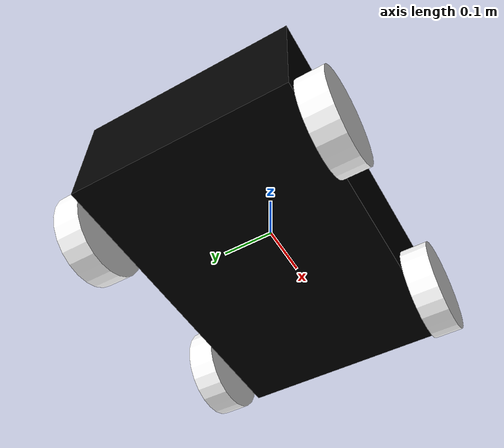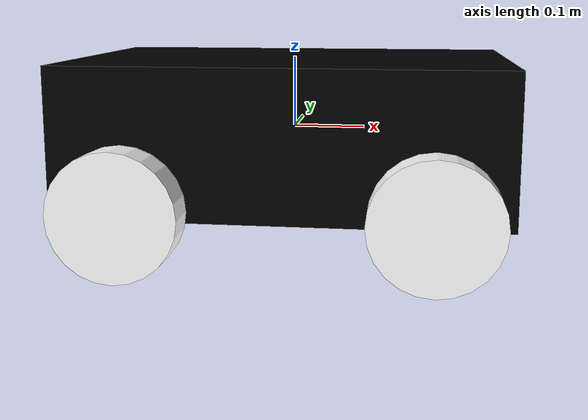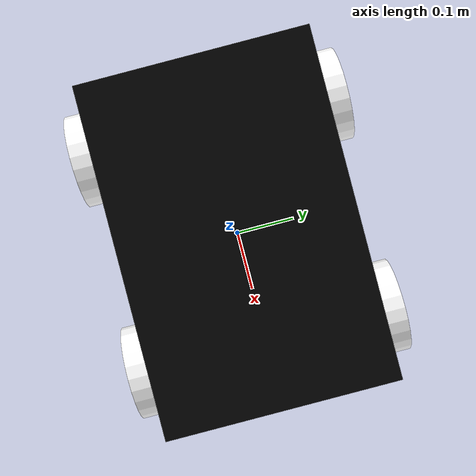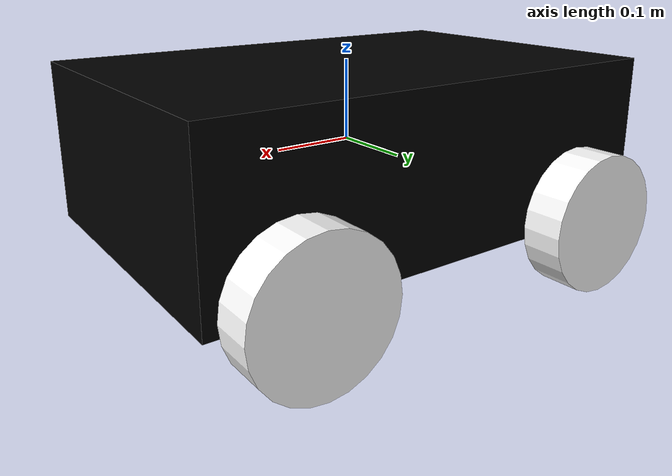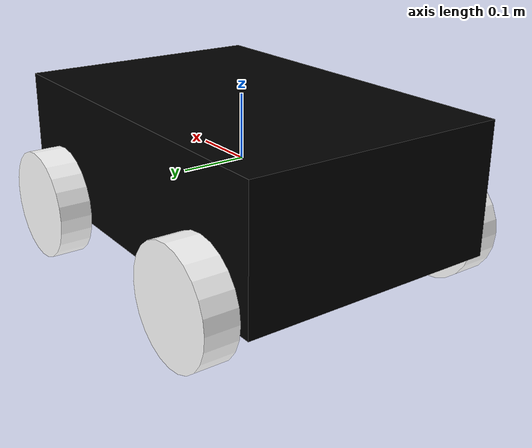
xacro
<?xml version="1.0"?>
<robot xmlns:xacro="http://www.ros.org/wiki/xacro" name="my_robot">

    <material name="blue"><color rgba="0 0 0.8 1"/></material>
    <material name="black"><color rgba="0 0 0 1"/></material>
    <material name="white"><color rgba="1 1 1 1"/></material>

    <xacro:property name="wheel_radius" value="0.085"/>
    <xacro:macro name="rectangle_inertia" params="m x y z">
        <inertial>
            <mass value="${m}"/>
            <inertia ixx="${(m/12) * (y*y + z*z)}" ixy="0.0" ixz="0.0"
                     iyy="${(m/12) * (x*x + z*z)}" iyz="0.0"
                     izz="${(m/12) * (x*x + y*y)}"/>
        </inertial>
    </xacro:macro>

    <xacro:macro name="cylinder_inertia" params="m r h">
        <inertial>
            <mass value="${m}"/>
            <inertia ixx="${(m/12) * (3*r*r + h*h)}" ixy="0.0" ixz="0.0"
                     iyy="${(m/12) * (3*r*r + h*h)}" iyz="0.0"
                     izz="${(m/2) * (r*r)}"/>
        </inertial>
    </xacro:macro>

    <link name="dummy"></link>

    <joint name="chassis_joint" type="fixed">
        <parent link="dummy"/>
        <child link="chassis"/>
        <origin xyz="0 0 0"/>
    </joint>

    <link name="chassis">
        <visual>
            <geometry><box size="0.6 0.4 0.2"/></geometry>
            <material name="black"/>
        </visual>
        <collision>
            <geometry><box size="0.6 0.4 0.2"/></geometry>
        </collision>
        <xacro:rectangle_inertia m="5.0" x="0.6" y="0.4" z="0.2"/>
    </link>

    <xacro:macro name="wheel" params="name x_off y_off">
        <joint name="${name}_wheel_joint" type="continuous">
            <parent link="chassis"/>
            <child link="${name}_wheel"/>
            <origin xyz="${x_off} ${y_off} -0.085" rpy="-${pi/2} 0 0"/>
            <axis xyz="0 0 1"/>
        </joint>

       <link name="${name}_wheel">
            <visual>
                <geometry><cylinder radius="${wheel_radius}" length="0.05"/></geometry>
                <material name="white"/>
            </visual>
            <collision>
                <geometry><cylinder radius="${wheel_radius}" length="0.05"/></geometry>
            </collision>
            <xacro:cylinder_inertia m="0.5" r="${wheel_radius}" h="0.05"/>
        </link>
    </xacro:macro>

    <xacro:wheel name="front_left" x_off="0.2" y_off="0.225" />
    <xacro:wheel name="front_right" x_off="0.2" y_off="-0.225" />
    <xacro:wheel name="back_left" x_off="-0.2" y_off="0.225" />
    <xacro:wheel name="back_right" x_off="-0.2" y_off="-0.225" />

</robot>
